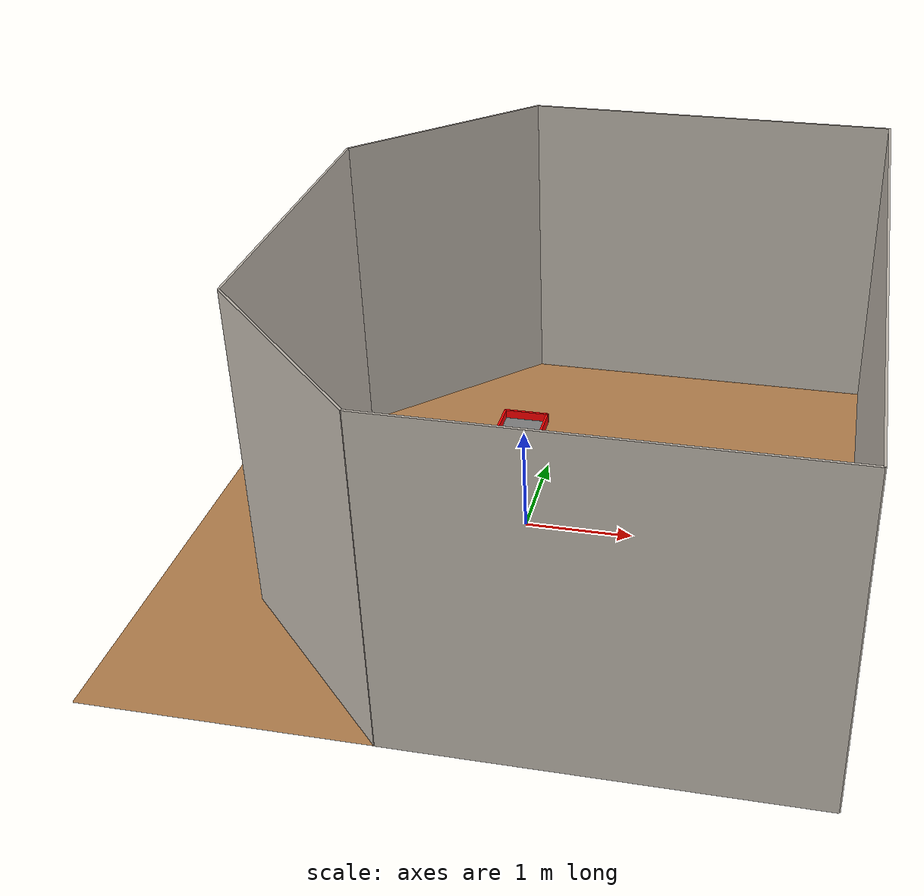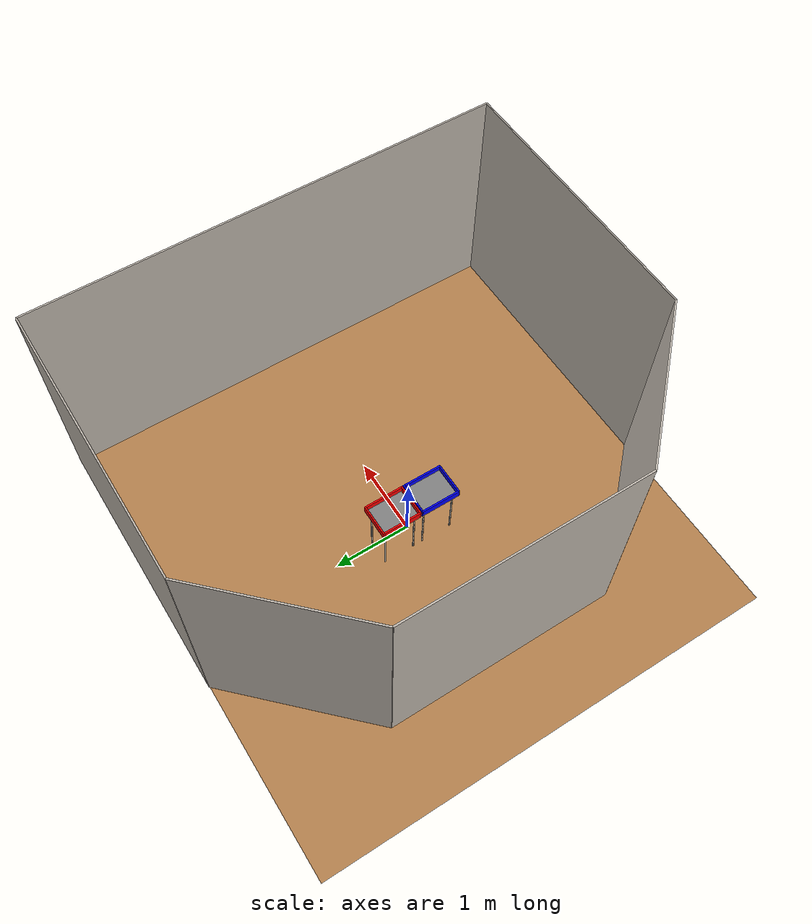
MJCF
<mujoco model="bins_arena">
  <asset>
    <!-- floor -->
    <texture builtin="gradient" height="256" rgb1=".9 .9 1." rgb2=".2 .3 .4" type="skybox" width="256"/>
    <texture file="../textures/wood-tiles.png" type="2d" name="texplane"/>
    <material name="floorplane" reflectance="0.01" shininess="0.0" specular="0.0" texrepeat="2 2" texture="texplane" texuniform="true"/>
    <!-- steel legs -->
    <texture file="../textures/steel-brushed.png" type="cube" name="tex-steel-brushed"/>
    <material name="table_legs_metal" reflectance="0.8" shininess="0.8" texrepeat="1 1" texture="tex-steel-brushed" />
    <!-- plaster walls -->
    <texture file="../textures/cream-plaster.png" type="2d" name="tex-cream-plaster"/>
    <material name="walls_mat" reflectance="0.0" shininess="0.1" specular="0.1" texrepeat="3 3" texture="tex-cream-plaster" texuniform="true" />
    <!-- bins -->
    <texture file="../textures/light-wood.png" type="2d" name="tex-light-wood"/>
    <texture file="../textures/dark-wood.png" type="2d" name="tex-dark-wood"/>
    <material name="light-wood" reflectance="0" texrepeat="15 15" texture="tex-light-wood" texuniform="true"/>
    <material name="dark-wood" reflectance="0" texrepeat="5 5" texture="tex-dark-wood" texuniform="true"/>
  </asset>

  <worldbody>
    <geom condim="3" material="floorplane" name="floor" pos="0 0 0" size="3 3 .125" type="plane"/>

    <!-- Walls (visual only) -->
    <geom pos="-1.25 2.25 1.5" quat="0.6532815 0.6532815 0.2705981 0.2705981" size="1.06 1.5 0.01" type="box" conaffinity="0" contype="0" group="1" 	name="wall_leftcorner_visual" material="walls_mat"/>
    <geom pos="-1.25 -2.25 1.5" quat="0.6532815 0.6532815 -0.2705981 -0.2705981" size="1.06 1.5 0.01" type="box" conaffinity="0" contype="0" group="1" 	name="wall_rightcorner_visual" material="walls_mat"/>
    <geom pos="1.25 3 1.5" quat="0.7071 0.7071 0 0" size="1.75 1.5 0.01" type="box" conaffinity="0" contype="0" group="1" 				name="wall_left_visual" material="walls_mat"/>
    <geom pos="1.25 -3 1.5" quat="0.7071 -0.7071 0 0" size="1.75 1.5 0.01" type="box" conaffinity="0" contype="0" group="1" 				name="wall_right_visual" material="walls_mat"/>
    <geom pos="-2 0 1.5" quat="0.5 0.5 0.5 0.5" size="1.5 1.5 0.01" type="box" conaffinity="0" contype="0" group="1" 					name="wall_rear_visual" material="walls_mat"/>
    <geom pos="3 0 1.5" quat="0.5 0.5 -0.5 -0.5" size="3 1.5 0.01" type="box" conaffinity="0" contype="0" group="1" 					name="wall_front_visual" material="walls_mat"/>

    <!-- bins -->
    <body name="bin1" pos="-0.1 -0.25 0.8">

      <!-- Table Surface -->
      <geom name="bin1_surface" pos="0 0 0" size="0.2 0.25 0.02" type="box" group="0" friction="1 0.005 0.0001"/>
      <!-- Bottom plate of bin covers table surface looks like light wood -->
      <geom pos="0 0 0" material="light-wood" size="0.2 0.25 0.02" type="box" conaffinity="0" contype="0" group="1"/>

        <!-- Left beam -->
        <geom pos="0 0.25 0.05" size="0.21 0.01 0.05" type="box" group="0" friction="1 0.005 0.0001" rgba="0 0 1 1"/>
	<!-- Wood material cover -->
        <geom pos="0 0.25 0.05" size="0.21 0.01 0.05" type="box" conaffinity="0" contype="0" group="1" material="light-wood"/>

	<!-- Right beam -->
        <geom pos="0 -0.25 0.05" size="0.21 0.01 0.05" type="box" group="0" friction="1 0.005 0.0001" rgba="0 0 1 1"/>
	<!-- Wood material -->
        <geom pos="0 -0.25 0.05" size="0.21 0.01 0.05" type="box" conaffinity="0" contype="0" group="1" material="light-wood"/>

	<!-- Front beam -->
        <geom pos="0.2 0 0.05" size="0.01 0.25 0.05" type="box" group="0" friction="1 0.005 0.0001" rgba="0 0 1 1"/>
	<!-- Wood material -->
	    <geom pos="0.2 0 0.05" size="0.01 0.25 0.05" type="box" conaffinity="0" contype="0" group="1" material="light-wood"/>

	<!-- Back beam -->
	    <geom pos="-0.2 0 0.05" size="0.01 0.25 0.05" type="box" group="0" friction="1 0.005 0.0001" rgba="0 0 1 1"/>
	<!-- Wood material -->
	    <geom pos="-0.2 0 0.05" size="0.01 0.25 0.05" type="box" conaffinity="0" contype="0" group="1" material="light-wood"/>

        <!-- Legs (visual only) -->
        <geom pos="0.15 0.2 -0.4" size="0.01 0.4" type="cylinder" conaffinity="0" contype="0" group="1" name="bin1_leg1_visual" material="table_legs_metal"/>
        <geom pos="-0.15 0.2 -0.4" size="0.01 0.4" type="cylinder" conaffinity="0" contype="0" group="1" name="bin1_leg2_visual" material="table_legs_metal"/>
        <geom pos="-0.15 -0.2 -0.4" size="0.01 0.4" type="cylinder" conaffinity="0" contype="0" group="1" name="bin1_leg3_visual" material="table_legs_metal"/>
        <geom pos="0.15 -0.2 -0.4" size="0.01 0.4" type="cylinder" conaffinity="0" contype="0" group="1" name="bin1_leg4_visual" material="table_legs_metal"/>
    </body>

    <!-- bin2 will be changed to be the same as bin1 instead of having inner compartments as we will be haing a large unspecified number of objects -->
    <body name="bin2" pos="-0.1 0.28 0.8">
      <!-- Bottom Plate -->
      <geom name="bin2_surface" pos="0 0 0" size="0.2 0.25 0.02" type="box" group="0" friction="1 0.005 0.0001"/>
      <!-- Wood material -->
      <geom pos="0 0 0" size="0.2 0.25 0.02" type="box" conaffinity="0" contype="0" group="1" material="dark-wood"/>

        <!-- Left beam -->
        <geom pos="0 0.25 0.05" size="0.21 0.01 0.05" type="box" group="0" friction="1 0.005 0.0001" rgba="1 0 0 1"/>
        <geom pos="0 0.25 0.05" size="0.21 0.01 0.05" type="box" conaffinity="0" contype="0" group="1" material="dark-wood"/>

	<!-- Divider X-dir -->

	<!-- Right beam -->
	    <geom pos="0 -0.25 0.05" size="0.21 0.01 0.05" type="box" group="0" friction="1 0.005 0.0001" rgba="1 0 0 1"/>
        <geom pos="0 -0.25 0.05" size="0.21 0.01 0.05" type="box" conaffinity="0" contype="0" group="1" material="dark-wood"/>

	<!-- Front Beam -->
	    <geom pos="0.2 0 0.05" size="0.01 0.25 0.05" type="box" group="0" friction="1 0.005 0.0001" rgba="1 0 0 1"/>
        <geom pos="0.2 0 0.05" size="0.01 0.25 0.05" type="box" conaffinity="0" contype="0" group="1" material="dark-wood"/>

	<!-- Divider Y-dir -->

	<!-- Rear Beam -->
	    <geom pos="-0.2 0 0.05" size="0.01 0.25 0.05" type="box" group="0" friction="1 0.005 0.0001" rgba="1 0 0 1"/>
        <geom pos="-0.2 0 0.05" size="0.01 0.25 0.05" type="box" conaffinity="0" contype="0" group="1" material="dark-wood"/>

	<!-- Legs (visual only) -->
        <geom pos="0.15 0.2 -0.4" size="0.01 0.4" type="cylinder" conaffinity="0" contype="0" group="1" name="bin2_leg1_visual" material="table_legs_metal"/>
        <geom pos="-0.15 0.2 -0.4" size="0.01 0.4" type="cylinder" conaffinity="0" contype="0" group="1" name="bin2_leg2_visual" material="table_legs_metal"/>
        <geom pos="-0.15 -0.2 -0.4" size="0.01 0.4" type="cylinder" conaffinity="0" contype="0" group="1" name="bin2_leg3_visual" material="table_legs_metal"/>
        <geom pos="0.15 -0.2 -0.4" size="0.01 0.4" type="cylinder" conaffinity="0" contype="0" group="1" name="bin2_leg4_visual" material="table_legs_metal"/>
    </body>

    <!-- Light -->
    <light diffuse=".8 .8 .8" dir="0 -.15 -1" directional="false" pos="1 1 4.0" specular="0.3 0.3 0.3" castshadow="false"/>
    <light diffuse=".8 .8 .8" dir="0 -.15 -1" directional="false" pos="-3. -3. 4.0" specular="0.3 0.3 0.3" castshadow="false"/>

    <!-- Cameras -->
    <!-- front view -->
    <camera mode="fixed" name="frontview" pos="1.6 0 1.45" quat="0.56 0.43 0.43 0.56"/>
    <!-- bird view -->
    <camera mode="fixed" name="birdview" pos="-0.2 0 3.0" quat="0.7071 0 0 0.7071"/>
    <!-- agent view -->
    <camera mode="fixed" name="agentview" pos="1.0 0 1.75" quat="0.653 0.271 0.271 0.653"/>
  </worldbody>
</mujoco>
